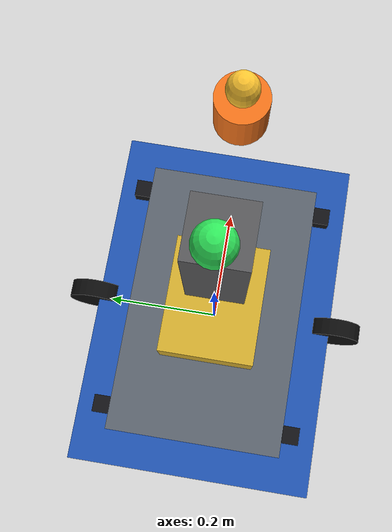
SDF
<?xml version="1.0" ?>
<sdf version="1.6">
  <model name="warehouse_robot">
    <static>false</static>
    <link name="base_link">
      <pose>0 0 0 0 0 0</pose>
      <inertial>
        <mass>18.0</mass>
        <inertia>
          <ixx>1.2</ixx><ixy>0.0</ixy><ixz>0.0</ixz>
          <iyy>2.0</iyy><iyz>0.0</iyz><izz>2.4</izz>
        </inertia>
      </inertial>
      <collision name="base_collision">
        <geometry>
          <box><size>0.60 0.42 0.12</size></box>
        </geometry>
      </collision>
      <visual name="base_visual">
        <geometry>
          <box><size>0.60 0.42 0.12</size></box>
        </geometry>
        <material>
          <ambient>0.12 0.32 0.68 1</ambient>
          <diffuse>0.12 0.32 0.68 1</diffuse>
          <specular>0.2 0.2 0.25 1</specular>
        </material>
      </visual>

      <visual name="deck_visual">
        <pose>0 0 0.08 0 0 0</pose>
        <geometry>
          <box><size>0.48 0.30 0.02</size></box>
        </geometry>
        <material>
          <ambient>0.35 0.38 0.42 1</ambient>
          <diffuse>0.35 0.38 0.42 1</diffuse>
        </material>
      </visual>

      <visual name="front_trim_visual">
        <pose>0.20 0 0.045 0 0 0</pose>
        <geometry>
          <box><size>0.03 0.36 0.07</size></box>
        </geometry>
        <material>
          <ambient>0.07 0.07 0.08 1</ambient>
          <diffuse>0.07 0.07 0.08 1</diffuse>
        </material>
      </visual>

      <visual name="rear_trim_visual">
        <pose>-0.20 0 0.045 0 0 0</pose>
        <geometry>
          <box><size>0.03 0.36 0.07</size></box>
        </geometry>
        <material>
          <ambient>0.07 0.07 0.08 1</ambient>
          <diffuse>0.07 0.07 0.08 1</diffuse>
        </material>
      </visual>
    </link>

    <link name="mast_link">
      <pose>0.05 0 0.24 0 0 0</pose>
      <inertial>
        <mass>2.0</mass>
        <inertia>
          <ixx>0.05</ixx><ixy>0.0</ixy><ixz>0.0</ixz>
          <iyy>0.05</iyy><iyz>0.0</iyz><izz>0.02</izz>
        </inertia>
      </inertial>
      <collision name="mast_collision">
        <geometry>
          <box><size>0.10 0.10 0.24</size></box>
        </geometry>
      </collision>
      <visual name="mast_visual">
        <geometry>
          <box><size>0.10 0.10 0.24</size></box>
        </geometry>
        <material>
          <ambient>0.34 0.34 0.35 1</ambient>
          <diffuse>0.34 0.34 0.35 1</diffuse>
        </material>
      </visual>
    </link>

    <link name="sensor_link">
      <pose>0.23 0 0.36 0 0 0</pose>
      <inertial>
        <mass>0.4</mass>
        <inertia>
          <ixx>0.01</ixx><ixy>0.0</ixy><ixz>0.0</ixz>
          <iyy>0.01</iyy><iyz>0.0</iyz><izz>0.01</izz>
        </inertia>
      </inertial>
      <collision name="sensor_collision">
        <geometry>
          <cylinder><radius>0.04</radius><length>0.06</length></cylinder>
        </geometry>
      </collision>
      <visual name="sensor_visual">
        <geometry>
          <cylinder><radius>0.04</radius><length>0.06</length></cylinder>
        </geometry>
        <material>
          <ambient>0.95 0.45 0.10 1</ambient>
          <diffuse>0.95 0.45 0.10 1</diffuse>
        </material>
      </visual>

      <visual name="sensor_cap_visual">
        <pose>0.0 0 0.05 0 0 0</pose>
        <geometry>
          <sphere><radius>0.024</radius></sphere>
        </geometry>
        <material>
          <ambient>0.98 0.76 0.18 1</ambient>
          <diffuse>0.98 0.76 0.18 1</diffuse>
        </material>
      </visual>
    </link>

    <link name="left_wheel_link">
      <pose>0 -0.22 0.03 0 1.570796 0</pose>
      <collision name="left_wheel_collision">
        <geometry>
          <cylinder><radius>0.05</radius><length>0.03</length></cylinder>
        </geometry>
      </collision>
      <visual name="left_wheel_visual">
        <geometry>
          <cylinder><radius>0.05</radius><length>0.03</length></cylinder>
        </geometry>
        <material>
          <ambient>0.05 0.05 0.05 1</ambient>
          <diffuse>0.05 0.05 0.05 1</diffuse>
        </material>
      </visual>
    </link>

    <link name="right_wheel_link">
      <pose>0 0.22 0.03 0 1.570796 0</pose>
      <collision name="right_wheel_collision">
        <geometry>
          <cylinder><radius>0.05</radius><length>0.03</length></cylinder>
        </geometry>
      </collision>
      <visual name="right_wheel_visual">
        <geometry>
          <cylinder><radius>0.05</radius><length>0.03</length></cylinder>
        </geometry>
        <material>
          <ambient>0.05 0.05 0.05 1</ambient>
          <diffuse>0.05 0.05 0.05 1</diffuse>
        </material>
      </visual>
    </link>

    <link name="caster_link">
      <pose>-0.20 0 0.02 0 0 0</pose>
      <collision name="caster_collision">
        <geometry>
          <sphere><radius>0.04</radius></sphere>
        </geometry>
      </collision>
      <visual name="caster_visual">
        <geometry>
          <sphere><radius>0.04</radius></sphere>
        </geometry>
        <material>
          <ambient>0.08 0.08 0.08 1</ambient>
          <diffuse>0.08 0.08 0.08 1</diffuse>
        </material>
      </visual>
    </link>

    <link name="status_light_link">
      <pose>0.00 0 0.46 0 0 0</pose>
      <collision name="status_light_collision">
        <geometry>
          <sphere><radius>0.03</radius></sphere>
        </geometry>
      </collision>
      <visual name="status_light_visual">
        <geometry>
          <sphere><radius>0.03</radius></sphere>
        </geometry>
        <material>
          <ambient>0.18 0.9 0.35 1</ambient>
          <diffuse>0.18 0.9 0.35 1</diffuse>
        </material>
      </visual>
    </link>

    <link name="cargo_box_link">
      <pose>0.00 0 0.09 0 0 0</pose>
      <collision name="cargo_box_collision">
        <geometry>
          <box><size>0.20 0.16 0.12</size></box>
        </geometry>
      </collision>
      <visual name="cargo_box_visual">
        <geometry>
          <box><size>0.20 0.16 0.12</size></box>
        </geometry>
        <material>
          <ambient>0.82 0.67 0.18 1</ambient>
          <diffuse>0.82 0.67 0.18 1</diffuse>
        </material>
      </visual>
    </link>

    <joint name="base_to_mast" type="fixed">
      <parent>base_link</parent>
      <child>mast_link</child>
    </joint>

    <joint name="mast_to_sensor" type="fixed">
      <parent>mast_link</parent>
      <child>sensor_link</child>
    </joint>

    <joint name="base_to_left_wheel" type="fixed">
      <parent>base_link</parent>
      <child>left_wheel_link</child>
    </joint>

    <joint name="base_to_right_wheel" type="fixed">
      <parent>base_link</parent>
      <child>right_wheel_link</child>
    </joint>

    <joint name="base_to_caster" type="fixed">
      <parent>base_link</parent>
      <child>caster_link</child>
    </joint>

    <joint name="base_to_status_light" type="fixed">
      <parent>base_link</parent>
      <child>status_light_link</child>
    </joint>

    <joint name="base_to_cargo_box" type="fixed">
      <parent>base_link</parent>
      <child>cargo_box_link</child>
    </joint>

    <plugin name="random_velocity_motion" filename="libRandomVelocityPlugin.so">
      <link>base_link</link>
      <min_x>0.20</min_x>
      <max_x>0.35</max_x>
      <min_y>-0.10</min_y>
      <max_y>0.10</max_y>
      <min_z>0.00</min_z>
      <max_z>0.00</max_z>
      <initial_velocity>0.28 0.0 0.0 0.0 0.0 0.0</initial_velocity>
      <velocity_factor>1.0</velocity_factor>
      <update_period>2.5</update_period>
    </plugin>
  </model>
</sdf>
